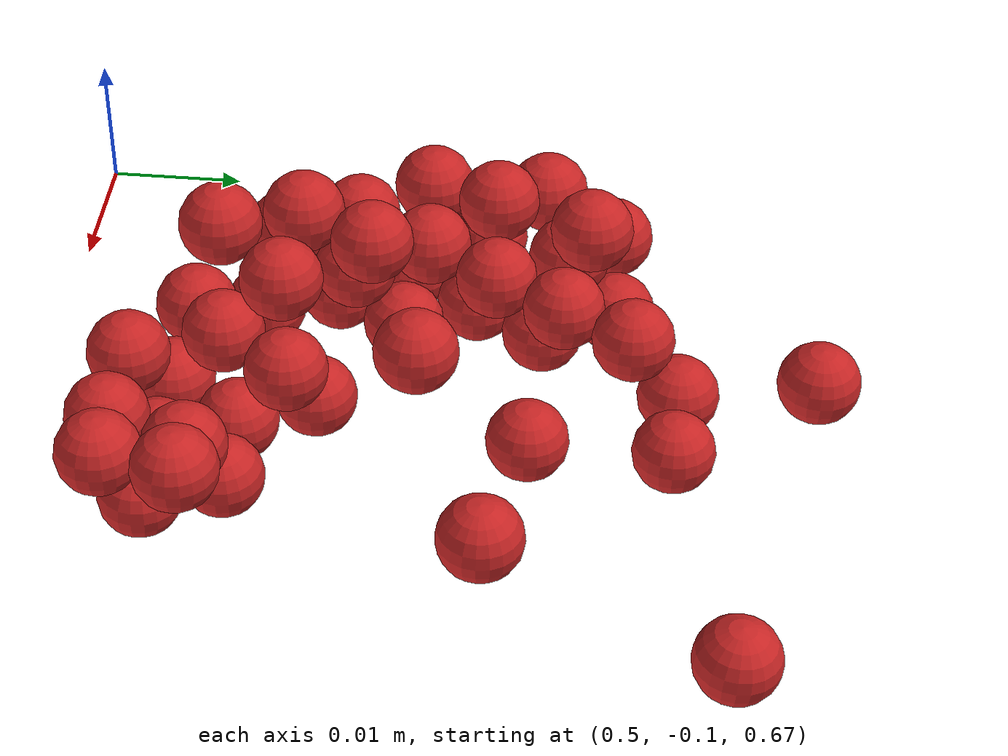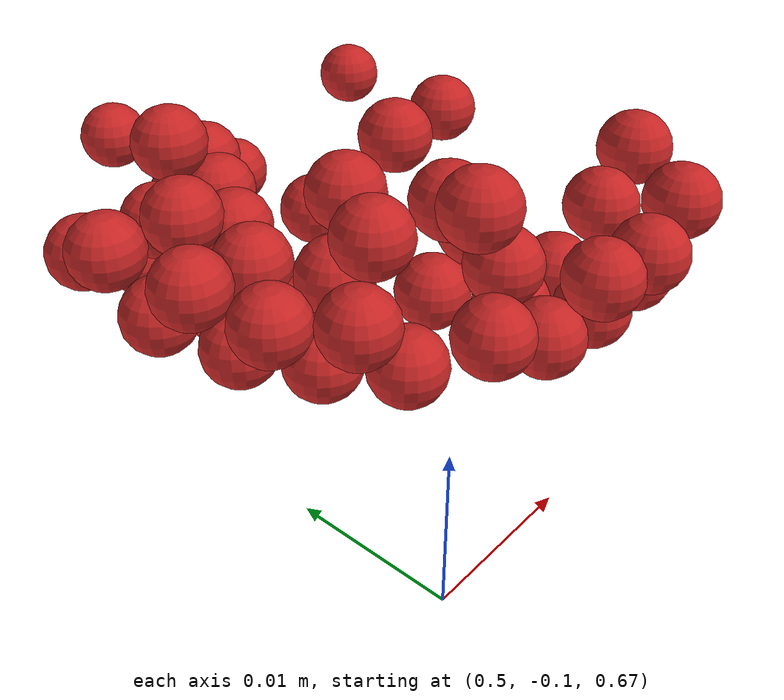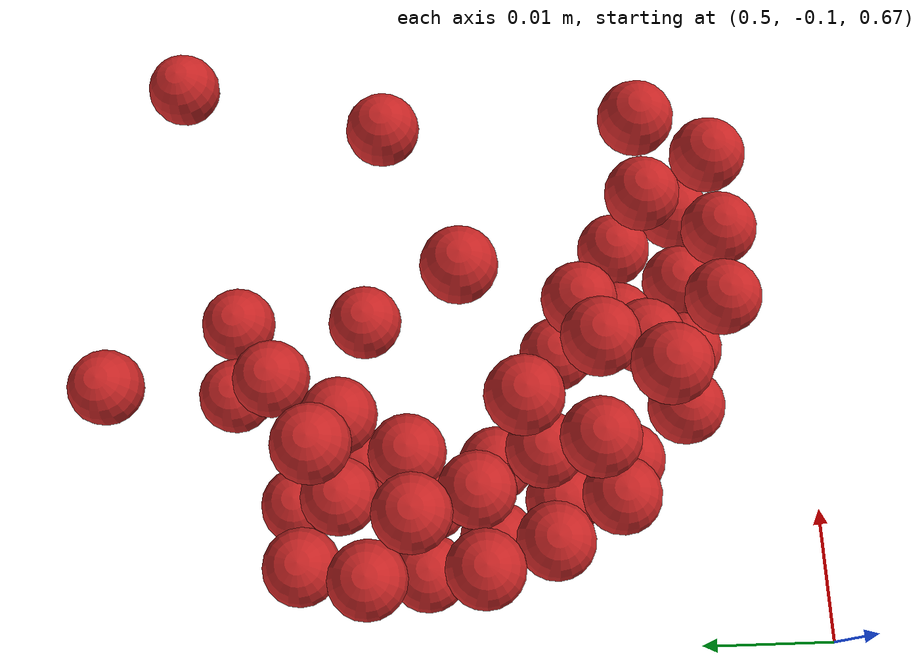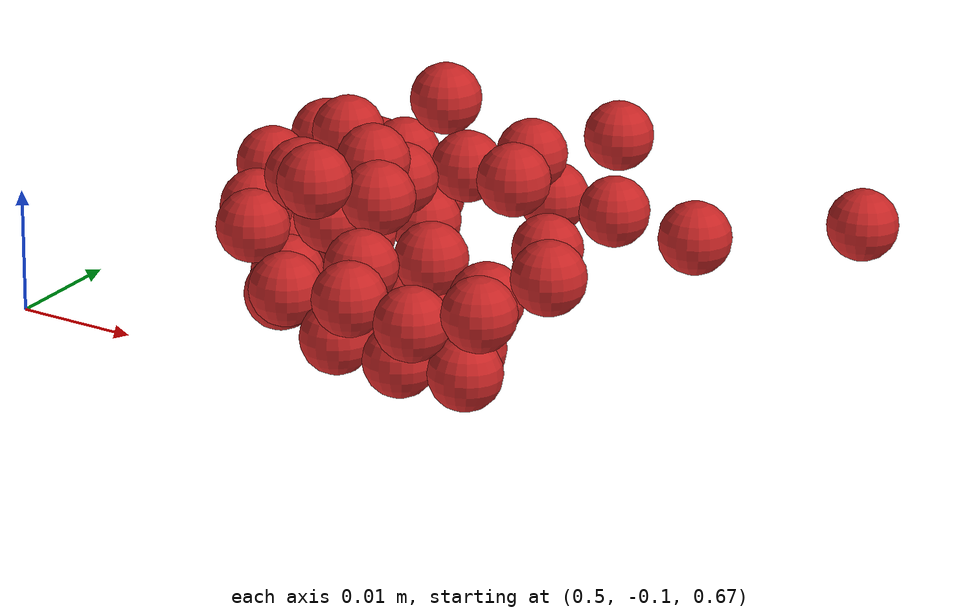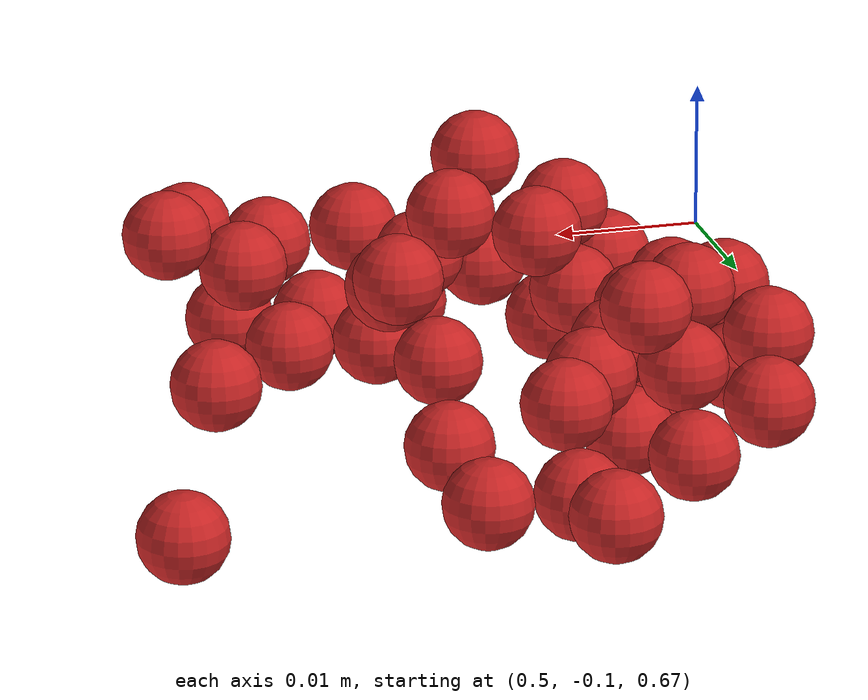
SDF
<sdf version="1.4">
 <world name="default">
  <model name="ground_plane">
   <static>1</static>
   <link name="link">
    <collision name="collision">
     <geometry><plane><normal>0 0 1</normal><size>100 100</size></plane></geometry>
     <surface><friction><ode><mu>100</mu><mu2>50</mu2></ode></friction></surface>
    </collision>
    <visual name="visual">
     <cast_shadows>0</cast_shadows>
     <geometry><plane><normal>0 0 1</normal><size>100 100</size></plane></geometry>
     <material>
      <script><uri>file://media/materials/scripts/gazebo.material</uri><name>Gazebo/Grey</name></script>
     </material>
    </visual>
    <velocity_decay><linear>0</linear><angular>0</angular></velocity_decay>
   </link>
  </model>
  <model name="sphere2">
   <pose>-0.01895 -0.049008 -0.066935 -0.010374 -0.005981 -0.001356</pose>
   <link name="link">
    <pose>0.55276 -0.048781 0.732288 0 -0 0</pose>
    <inertial>
     <mass>0.0000001</mass>
     <inertia><ixx>0.00004</ixx><ixy>0</ixy><ixz>0</ixz><iyy>0.00004</iyy><iyz>0</iyz><izz>0.00004</izz></inertia>
    </inertial>
    <collision name="collision">
     <surface>
      <contact><ode><kp>1e+10</kp><kd>1</kd></ode></contact>
      <friction><ode><mu>0.01</mu><mu2>0.01</mu2></ode></friction>
     </surface>
     <geometry><sphere><radius>0.003</radius></sphere></geometry>
    </collision>
    <visual name="visual">
     <geometry><sphere><radius>0.003</radius></sphere></geometry>
     <material>
      <script><uri>file://media/materials/scripts/gazebo.material</uri><name>Gazebo/Red</name></script>
     </material>
    </visual>
    <velocity_decay><linear>0</linear><angular>0</angular></velocity_decay>
   </link>
   <static>0</static>
  </model>
  <model name="sphere3">
   <pose>-0.044394 -0.047698 -0.057624 -0.003588 0.0046 0.006872</pose>
   <link name="link">
    <pose>0.55876 -0.048781 0.732288 0 -0 0</pose>
    <inertial>
     <mass>0.0000001</mass>
     <inertia><ixx>0.00004</ixx><ixy>0</ixy><ixz>0</ixz><iyy>0.00004</iyy><iyz>0</iyz><izz>0.00004</izz></inertia>
    </inertial>
    <collision name="collision">
     <surface>
      <contact><ode><kp>1e+10</kp><kd>1</kd></ode></contact>
      <friction><ode><mu>0.01</mu><mu2>0.01</mu2></ode></friction>
     </surface>
     <geometry><sphere><radius>0.003</radius></sphere></geometry>
    </collision>
    <visual name="visual">
     <geometry><sphere><radius>0.003</radius></sphere></geometry>
     <material>
      <script><uri>file://media/materials/scripts/gazebo.material</uri><name>Gazebo/Red</name></script>
     </material>
    </visual>
    <velocity_decay><linear>0</linear><angular>0</angular></velocity_decay>
   </link>
   <static>0</static>
  </model>
  <model name="sphere5">
   <pose>-0.034827 -0.02861 -0.058217 0.001859 -0.000326 -0.001189</pose>
   <link name="link">
    <pose>0.54676 -0.042781 0.732288 0 -0 0</pose>
    <inertial>
     <mass>0.0000001</mass>
     <inertia><ixx>0.00004</ixx><ixy>0</ixy><ixz>0</ixz><iyy>0.00004</iyy><iyz>0</iyz><izz>0.00004</izz></inertia>
    </inertial>
    <collision name="collision">
     <surface>
      <contact><ode><kp>1e+10</kp><kd>1</kd></ode></contact>
      <friction><ode><mu>0.01</mu><mu2>0.01</mu2></ode></friction>
     </surface>
     <geometry><sphere><radius>0.003</radius></sphere></geometry>
    </collision>
    <visual name="visual">
     <geometry><sphere><radius>0.003</radius></sphere></geometry>
     <material>
      <script><uri>file://media/materials/scripts/gazebo.material</uri><name>Gazebo/Red</name></script>
     </material>
    </visual>
    <velocity_decay><linear>0</linear><angular>0</angular></velocity_decay>
   </link>
   <static>0</static>
  </model>
  <model name="sphere11">
   <pose>-0.020797 -0.053953 -0.055216 -0.058591 0.013196 -0.003456</pose>
   <link name="link">
    <pose>0.55876 -0.036781 0.732288 0 -0 0</pose>
    <inertial>
     <mass>0.0000001</mass>
     <inertia><ixx>0.00004</ixx><ixy>0</ixy><ixz>0</ixz><iyy>0.00004</iyy><iyz>0</iyz><izz>0.00004</izz></inertia>
    </inertial>
    <collision name="collision">
     <surface>
      <contact><ode><kp>1e+10</kp><kd>1</kd></ode></contact>
      <friction><ode><mu>0.01</mu><mu2>0.01</mu2></ode></friction>
     </surface>
     <geometry><sphere><radius>0.003</radius></sphere></geometry>
    </collision>
    <visual name="visual">
     <geometry><sphere><radius>0.003</radius></sphere></geometry>
     <material>
      <script><uri>file://media/materials/scripts/gazebo.material</uri><name>Gazebo/Red</name></script>
     </material>
    </visual>
    <velocity_decay><linear>0</linear><angular>0</angular></velocity_decay>
   </link>
   <static>0</static>
  </model>
  <model name="sphere12">
   <pose>-0.026586 -0.043876 -0.05611 0.009283 0.012691 0.001803</pose>
   <link name="link">
    <pose>0.54076 -0.030781 0.732288 0 -0 0</pose>
    <inertial>
     <mass>0.0000001</mass>
     <inertia><ixx>0.00004</ixx><ixy>0</ixy><ixz>0</ixz><iyy>0.00004</iyy><iyz>0</iyz><izz>0.00004</izz></inertia>
    </inertial>
    <collision name="collision">
     <surface>
      <contact><ode><kp>1e+10</kp><kd>1</kd></ode></contact>
      <friction><ode><mu>0.01</mu><mu2>0.01</mu2></ode></friction>
     </surface>
     <geometry><sphere><radius>0.003</radius></sphere></geometry>
    </collision>
    <visual name="visual">
     <geometry><sphere><radius>0.003</radius></sphere></geometry>
     <material>
      <script><uri>file://media/materials/scripts/gazebo.material</uri><name>Gazebo/Red</name></script>
     </material>
    </visual>
    <velocity_decay><linear>0</linear><angular>0</angular></velocity_decay>
   </link>
   <static>0</static>
  </model>
  <model name="sphere13">
   <pose>-0.034947 -0.036555 -0.061277 -0.010989 0.004302 -0.010016</pose>
   <link name="link">
    <pose>0.54676 -0.030781 0.732288 0 -0 0</pose>
    <inertial>
     <mass>0.0000001</mass>
     <inertia><ixx>0.00004</ixx><ixy>0</ixy><ixz>0</ixz><iyy>0.00004</iyy><iyz>0</iyz><izz>0.00004</izz></inertia>
    </inertial>
    <collision name="collision">
     <surface>
      <contact><ode><kp>1e+10</kp><kd>1</kd></ode></contact>
      <friction><ode><mu>0.01</mu><mu2>0.01</mu2></ode></friction>
     </surface>
     <geometry><sphere><radius>0.003</radius></sphere></geometry>
    </collision>
    <visual name="visual">
     <geometry><sphere><radius>0.003</radius></sphere></geometry>
     <material>
      <script><uri>file://media/materials/scripts/gazebo.material</uri><name>Gazebo/Red</name></script>
     </material>
    </visual>
    <velocity_decay><linear>0</linear><angular>0</angular></velocity_decay>
   </link>
   <static>0</static>
  </model>
  <model name="sphere16">
   <pose>-0.024652 -0.02894 -0.065397 0.000577 -0.001939 -0.000928</pose>
   <link name="link">
    <pose>0.54076 -0.048781 0.738288 0 -0 0</pose>
    <inertial>
     <mass>0.0000001</mass>
     <inertia><ixx>0.00004</ixx><ixy>0</ixy><ixz>0</ixz><iyy>0.00004</iyy><iyz>0</iyz><izz>0.00004</izz></inertia>
    </inertial>
    <collision name="collision">
     <surface>
      <contact><ode><kp>1e+10</kp><kd>1</kd></ode></contact>
      <friction><ode><mu>0.01</mu><mu2>0.01</mu2></ode></friction>
     </surface>
     <geometry><sphere><radius>0.003</radius></sphere></geometry>
    </collision>
    <visual name="visual">
     <geometry><sphere><radius>0.003</radius></sphere></geometry>
     <material>
      <script><uri>file://media/materials/scripts/gazebo.material</uri><name>Gazebo/Red</name></script>
     </material>
    </visual>
    <velocity_decay><linear>0</linear><angular>0</angular></velocity_decay>
   </link>
   <static>0</static>
  </model>
  <model name="sphere20">
   <pose>-0.035198 -0.042568 -0.048904 0.002333 0.036754 0.002307</pose>
   <link name="link">
    <pose>0.54076 -0.042781 0.738288 0 -0 0</pose>
    <inertial>
     <mass>0.0000001</mass>
     <inertia><ixx>0.00004</ixx><ixy>0</ixy><ixz>0</ixz><iyy>0.00004</iyy><iyz>0</iyz><izz>0.00004</izz></inertia>
    </inertial>
    <collision name="collision">
     <surface>
      <contact><ode><kp>1e+10</kp><kd>1</kd></ode></contact>
      <friction><ode><mu>0.01</mu><mu2>0.01</mu2></ode></friction>
     </surface>
     <geometry><sphere><radius>0.003</radius></sphere></geometry>
    </collision>
    <visual name="visual">
     <geometry><sphere><radius>0.003</radius></sphere></geometry>
     <material>
      <script><uri>file://media/materials/scripts/gazebo.material</uri><name>Gazebo/Red</name></script>
     </material>
    </visual>
    <velocity_decay><linear>0</linear><angular>0</angular></velocity_decay>
   </link>
   <static>0</static>
  </model>
  <model name="sphere24">
   <pose>-0.033227 -0.061752 -0.064947 -0.032589 0.009565 -0.001294</pose>
   <link name="link">
    <pose>0.54076 -0.036781 0.738288 0 -0 0</pose>
    <inertial>
     <mass>0.0000001</mass>
     <inertia><ixx>0.00004</ixx><ixy>0</ixy><ixz>0</ixz><iyy>0.00004</iyy><iyz>0</iyz><izz>0.00004</izz></inertia>
    </inertial>
    <collision name="collision">
     <surface>
      <contact><ode><kp>1e+10</kp><kd>1</kd></ode></contact>
      <friction><ode><mu>0.01</mu><mu2>0.01</mu2></ode></friction>
     </surface>
     <geometry><sphere><radius>0.003</radius></sphere></geometry>
    </collision>
    <visual name="visual">
     <geometry><sphere><radius>0.003</radius></sphere></geometry>
     <material>
      <script><uri>file://media/materials/scripts/gazebo.material</uri><name>Gazebo/Red</name></script>
     </material>
    </visual>
    <velocity_decay><linear>0</linear><angular>0</angular></velocity_decay>
   </link>
   <static>0</static>
  </model>
  <model name="sphere28">
   <pose>-0.028329 -0.078865 -0.072438 -0.041415 -0.005195 0.007412</pose>
   <link name="link">
    <pose>0.54076 -0.030781 0.738288 0 -0 0</pose>
    <inertial>
     <mass>0.0000001</mass>
     <inertia><ixx>0.00004</ixx><ixy>0</ixy><ixz>0</ixz><iyy>0.00004</iyy><iyz>0</iyz><izz>0.00004</izz></inertia>
    </inertial>
    <collision name="collision">
     <surface>
      <contact><ode><kp>1e+10</kp><kd>1</kd></ode></contact>
      <friction><ode><mu>0.01</mu><mu2>0.01</mu2></ode></friction>
     </surface>
     <geometry><sphere><radius>0.003</radius></sphere></geometry>
    </collision>
    <visual name="visual">
     <geometry><sphere><radius>0.003</radius></sphere></geometry>
     <material>
      <script><uri>file://media/materials/scripts/gazebo.material</uri><name>Gazebo/Red</name></script>
     </material>
    </visual>
    <velocity_decay><linear>0</linear><angular>0</angular></velocity_decay>
   </link>
   <static>0</static>
  </model>
  <model name="sphere29">
   <pose>-0.057388 -0.072465 -0.052823 -0.060579 0.030622 -0.001886</pose>
   <link name="link">
    <pose>0.54676 -0.030781 0.738288 0 -0 0</pose>
    <inertial>
     <mass>0.0000001</mass>
     <inertia><ixx>0.00004</ixx><ixy>0</ixy><ixz>0</ixz><iyy>0.00004</iyy><iyz>0</iyz><izz>0.00004</izz></inertia>
    </inertial>
    <collision name="collision">
     <surface>
      <contact><ode><kp>1e+10</kp><kd>1</kd></ode></contact>
      <friction><ode><mu>0.01</mu><mu2>0.01</mu2></ode></friction>
     </surface>
     <geometry><sphere><radius>0.003</radius></sphere></geometry>
    </collision>
    <visual name="visual">
     <geometry><sphere><radius>0.003</radius></sphere></geometry>
     <material>
      <script><uri>file://media/materials/scripts/gazebo.material</uri><name>Gazebo/Red</name></script>
     </material>
    </visual>
    <velocity_decay><linear>0</linear><angular>0</angular></velocity_decay>
   </link>
   <static>0</static>
  </model>
  <model name="sphere34">
   <pose>-0.025953 -0.054325 -0.077858 -0.011172 -0.004961 0.00726</pose>
   <link name="link">
    <pose>0.55276 -0.048781 0.744288 0 -0 0</pose>
    <inertial>
     <mass>0.0000001</mass>
     <inertia><ixx>0.00004</ixx><ixy>0</ixy><ixz>0</ixz><iyy>0.00004</iyy><iyz>0</iyz><izz>0.00004</izz></inertia>
    </inertial>
    <collision name="collision">
     <surface>
      <contact><ode><kp>1e+10</kp><kd>1</kd></ode></contact>
      <friction><ode><mu>0.01</mu><mu2>0.01</mu2></ode></friction>
     </surface>
     <geometry><sphere><radius>0.003</radius></sphere></geometry>
    </collision>
    <visual name="visual">
     <geometry><sphere><radius>0.003</radius></sphere></geometry>
     <material>
      <script><uri>file://media/materials/scripts/gazebo.material</uri><name>Gazebo/Red</name></script>
     </material>
    </visual>
    <velocity_decay><linear>0</linear><angular>0</angular></velocity_decay>
   </link>
   <static>0</static>
  </model>
  <model name="sphere35">
   <pose>-0.037344 -0.032251 -0.071337 0.005423 0.006829 -0.001112</pose>
   <link name="link">
    <pose>0.55876 -0.048781 0.744288 0 -0 0</pose>
    <inertial>
     <mass>0.0000001</mass>
     <inertia><ixx>0.00004</ixx><ixy>0</ixy><ixz>0</ixz><iyy>0.00004</iyy><iyz>0</iyz><izz>0.00004</izz></inertia>
    </inertial>
    <collision name="collision">
     <surface>
      <contact><ode><kp>1e+10</kp><kd>1</kd></ode></contact>
      <friction><ode><mu>0.01</mu><mu2>0.01</mu2></ode></friction>
     </surface>
     <geometry><sphere><radius>0.003</radius></sphere></geometry>
    </collision>
    <visual name="visual">
     <geometry><sphere><radius>0.003</radius></sphere></geometry>
     <material>
      <script><uri>file://media/materials/scripts/gazebo.material</uri><name>Gazebo/Red</name></script>
     </material>
    </visual>
    <velocity_decay><linear>0</linear><angular>0</angular></velocity_decay>
   </link>
   <static>0</static>
  </model>
  <model name="sphere36">
   <pose>-0.028461 -0.033955 -0.072567 0.00911 0.003166 -0.003709</pose>
   <link name="link">
    <pose>0.54076 -0.042781 0.744288 0 -0 0</pose>
    <inertial>
     <mass>0.0000001</mass>
     <inertia><ixx>0.00004</ixx><ixy>0</ixy><ixz>0</ixz><iyy>0.00004</iyy><iyz>0</iyz><izz>0.00004</izz></inertia>
    </inertial>
    <collision name="collision">
     <surface>
      <contact><ode><kp>1e+10</kp><kd>1</kd></ode></contact>
      <friction><ode><mu>0.01</mu><mu2>0.01</mu2></ode></friction>
     </surface>
     <geometry><sphere><radius>0.003</radius></sphere></geometry>
    </collision>
    <visual name="visual">
     <geometry><sphere><radius>0.003</radius></sphere></geometry>
     <material>
      <script><uri>file://media/materials/scripts/gazebo.material</uri><name>Gazebo/Red</name></script>
     </material>
    </visual>
    <velocity_decay><linear>0</linear><angular>0</angular></velocity_decay>
   </link>
   <static>0</static>
  </model>
  <model name="sphere38">
   <pose>-0.02184 -0.030052 -0.062673 -0.007751 0.014486 0.000431</pose>
   <link name="link">
    <pose>0.55276 -0.042781 0.744288 0 -0 0</pose>
    <inertial>
     <mass>0.0000001</mass>
     <inertia><ixx>0.00004</ixx><ixy>0</ixy><ixz>0</ixz><iyy>0.00004</iyy><iyz>0</iyz><izz>0.00004</izz></inertia>
    </inertial>
    <collision name="collision">
     <surface>
      <contact><ode><kp>1e+10</kp><kd>1</kd></ode></contact>
      <friction><ode><mu>0.01</mu><mu2>0.01</mu2></ode></friction>
     </surface>
     <geometry><sphere><radius>0.003</radius></sphere></geometry>
    </collision>
    <visual name="visual">
     <geometry><sphere><radius>0.003</radius></sphere></geometry>
     <material>
      <script><uri>file://media/materials/scripts/gazebo.material</uri><name>Gazebo/Red</name></script>
     </material>
    </visual>
    <velocity_decay><linear>0</linear><angular>0</angular></velocity_decay>
   </link>
   <static>0</static>
  </model>
  <model name="sphere40">
   <pose>-0.03001 -0.060572 -0.073522 -0.009641 -0.004669 0.020482</pose>
   <link name="link">
    <pose>0.54076 -0.036781 0.744288 0 -0 0</pose>
    <inertial>
     <mass>0.0000001</mass>
     <inertia><ixx>0.00004</ixx><ixy>0</ixy><ixz>0</ixz><iyy>0.00004</iyy><iyz>0</iyz><izz>0.00004</izz></inertia>
    </inertial>
    <collision name="collision">
     <surface>
      <contact><ode><kp>1e+10</kp><kd>1</kd></ode></contact>
      <friction><ode><mu>0.01</mu><mu2>0.01</mu2></ode></friction>
     </surface>
     <geometry><sphere><radius>0.003</radius></sphere></geometry>
    </collision>
    <visual name="visual">
     <geometry><sphere><radius>0.003</radius></sphere></geometry>
     <material>
      <script><uri>file://media/materials/scripts/gazebo.material</uri><name>Gazebo/Red</name></script>
     </material>
    </visual>
    <velocity_decay><linear>0</linear><angular>0</angular></velocity_decay>
   </link>
   <static>0</static>
  </model>
  <model name="sphere41">
   <pose>-0.034616 -0.031726 -0.074725 -0.004914 -0.009288 -0.000557</pose>
   <link name="link">
    <pose>0.54676 -0.036781 0.744288 0 -0 0</pose>
    <inertial>
     <mass>0.0000001</mass>
     <inertia><ixx>0.00004</ixx><ixy>0</ixy><ixz>0</ixz><iyy>0.00004</iyy><iyz>0</iyz><izz>0.00004</izz></inertia>
    </inertial>
    <collision name="collision">
     <surface>
      <contact><ode><kp>1e+10</kp><kd>1</kd></ode></contact>
      <friction><ode><mu>0.01</mu><mu2>0.01</mu2></ode></friction>
     </surface>
     <geometry><sphere><radius>0.003</radius></sphere></geometry>
    </collision>
    <visual name="visual">
     <geometry><sphere><radius>0.003</radius></sphere></geometry>
     <material>
      <script><uri>file://media/materials/scripts/gazebo.material</uri><name>Gazebo/Red</name></script>
     </material>
    </visual>
    <velocity_decay><linear>0</linear><angular>0</angular></velocity_decay>
   </link>
   <static>0</static>
  </model>
  <model name="sphere44">
   <pose>-0.020141 -0.056278 -0.064548 0.001182 -0.001983 0.000811</pose>
   <link name="link">
    <pose>0.54076 -0.030781 0.744288 0 -0 0</pose>
    <inertial>
     <mass>0.0000001</mass>
     <inertia><ixx>0.00004</ixx><ixy>0</ixy><ixz>0</ixz><iyy>0.00004</iyy><iyz>0</iyz><izz>0.00004</izz></inertia>
    </inertial>
    <collision name="collision">
     <surface>
      <contact><ode><kp>1e+10</kp><kd>1</kd></ode></contact>
      <friction><ode><mu>0.01</mu><mu2>0.01</mu2></ode></friction>
     </surface>
     <geometry><sphere><radius>0.003</radius></sphere></geometry>
    </collision>
    <visual name="visual">
     <geometry><sphere><radius>0.003</radius></sphere></geometry>
     <material>
      <script><uri>file://media/materials/scripts/gazebo.material</uri><name>Gazebo/Red</name></script>
     </material>
    </visual>
    <velocity_decay><linear>0</linear><angular>0</angular></velocity_decay>
   </link>
   <static>0</static>
  </model>
  <model name="sphere45">
   <pose>-0.037827 -0.056009 -0.073877 -0.024325 0.003679 -0.00229</pose>
   <link name="link">
    <pose>0.54676 -0.030781 0.744288 0 -0 0</pose>
    <inertial>
     <mass>0.0000001</mass>
     <inertia><ixx>0.00004</ixx><ixy>0</ixy><ixz>0</ixz><iyy>0.00004</iyy><iyz>0</iyz><izz>0.00004</izz></inertia>
    </inertial>
    <collision name="collision">
     <surface>
      <contact><ode><kp>1e+10</kp><kd>1</kd></ode></contact>
      <friction><ode><mu>0.01</mu><mu2>0.01</mu2></ode></friction>
     </surface>
     <geometry><sphere><radius>0.003</radius></sphere></geometry>
    </collision>
    <visual name="visual">
     <geometry><sphere><radius>0.003</radius></sphere></geometry>
     <material>
      <script><uri>file://media/materials/scripts/gazebo.material</uri><name>Gazebo/Red</name></script>
     </material>
    </visual>
    <velocity_decay><linear>0</linear><angular>0</angular></velocity_decay>
   </link>
   <static>0</static>
  </model>
  <model name="sphere60">
   <pose>-0.034583 -0.067486 -0.073125 -0.004009 0.005726 0.02023</pose>
   <link name="link">
    <pose>0.54076 -0.030781 0.750288 0 -0 0</pose>
    <inertial>
     <mass>0.0000001</mass>
     <inertia><ixx>0.00004</ixx><ixy>0</ixy><ixz>0</ixz><iyy>0.00004</iyy><iyz>0</iyz><izz>0.00004</izz></inertia>
    </inertial>
    <collision name="collision">
     <surface>
      <contact><ode><kp>1e+10</kp><kd>1</kd></ode></contact>
      <friction><ode><mu>0.01</mu><mu2>0.01</mu2></ode></friction>
     </surface>
     <geometry><sphere><radius>0.003</radius></sphere></geometry>
    </collision>
    <visual name="visual">
     <geometry><sphere><radius>0.003</radius></sphere></geometry>
     <material>
      <script><uri>file://media/materials/scripts/gazebo.material</uri><name>Gazebo/Red</name></script>
     </material>
    </visual>
    <velocity_decay><linear>0</linear><angular>0</angular></velocity_decay>
   </link>
   <static>0</static>
  </model>
  <model name="sphere65">
   <pose>-0.032885 -0.05331 -0.071546 -0.027943 0.029482 -0.01762</pose>
   <link name="link">
    <pose>0.54676 -0.048781 0.756288 0 -0 0</pose>
    <inertial>
     <mass>0.0000001</mass>
     <inertia><ixx>0.00004</ixx><ixy>0</ixy><ixz>0</ixz><iyy>0.00004</iyy><iyz>0</iyz><izz>0.00004</izz></inertia>
    </inertial>
    <collision name="collision">
     <surface>
      <contact><ode><kp>1e+10</kp><kd>1</kd></ode></contact>
      <friction><ode><mu>0.01</mu><mu2>0.01</mu2></ode></friction>
     </surface>
     <geometry><sphere><radius>0.003</radius></sphere></geometry>
    </collision>
    <visual name="visual">
     <geometry><sphere><radius>0.003</radius></sphere></geometry>
     <material>
      <script><uri>file://media/materials/scripts/gazebo.material</uri><name>Gazebo/Red</name></script>
     </material>
    </visual>
    <velocity_decay><linear>0</linear><angular>0</angular></velocity_decay>
   </link>
   <static>0</static>
  </model>
  <model name="sphere66">
   <pose>-0.023766 -0.044244 -0.083962 0.004964 -0.004097 0.006455</pose>
   <link name="link">
    <pose>0.55276 -0.048781 0.756288 0 -0 0</pose>
    <inertial>
     <mass>0.0000001</mass>
     <inertia><ixx>0.00004</ixx><ixy>0</ixy><ixz>0</ixz><iyy>0.00004</iyy><iyz>0</iyz><izz>0.00004</izz></inertia>
    </inertial>
    <collision name="collision">
     <surface>
      <contact><ode><kp>1e+10</kp><kd>1</kd></ode></contact>
      <friction><ode><mu>0.01</mu><mu2>0.01</mu2></ode></friction>
     </surface>
     <geometry><sphere><radius>0.003</radius></sphere></geometry>
    </collision>
    <visual name="visual">
     <geometry><sphere><radius>0.003</radius></sphere></geometry>
     <material>
      <script><uri>file://media/materials/scripts/gazebo.material</uri><name>Gazebo/Red</name></script>
     </material>
    </visual>
    <velocity_decay><linear>0</linear><angular>0</angular></velocity_decay>
   </link>
   <static>0</static>
  </model>
  <model name="sphere72">
   <pose>-0.032482 -0.044267 -0.0875 -0.00366 -0.003641 0.016084</pose>
   <link name="link">
    <pose>0.54076 -0.036781 0.756288 0 -0 0</pose>
    <inertial>
     <mass>0.0000001</mass>
     <inertia><ixx>0.00004</ixx><ixy>0</ixy><ixz>0</ixz><iyy>0.00004</iyy><iyz>0</iyz><izz>0.00004</izz></inertia>
    </inertial>
    <collision name="collision">
     <surface>
      <contact><ode><kp>1e+10</kp><kd>1</kd></ode></contact>
      <friction><ode><mu>0.01</mu><mu2>0.01</mu2></ode></friction>
     </surface>
     <geometry><sphere><radius>0.003</radius></sphere></geometry>
    </collision>
    <visual name="visual">
     <geometry><sphere><radius>0.003</radius></sphere></geometry>
     <material>
      <script><uri>file://media/materials/scripts/gazebo.material</uri><name>Gazebo/Red</name></script>
     </material>
    </visual>
    <velocity_decay><linear>0</linear><angular>0</angular></velocity_decay>
   </link>
   <static>0</static>
  </model>
  <model name="sphere76">
   <pose>-0.029876 -0.032565 -0.085891 0.01604 0.001356 -0.008964</pose>
   <link name="link">
    <pose>0.54076 -0.030781 0.756288 0 -0 0</pose>
    <inertial>
     <mass>0.0000001</mass>
     <inertia><ixx>0.00004</ixx><ixy>0</ixy><ixz>0</ixz><iyy>0.00004</iyy><iyz>0</iyz><izz>0.00004</izz></inertia>
    </inertial>
    <collision name="collision">
     <surface>
      <contact><ode><kp>1e+10</kp><kd>1</kd></ode></contact>
      <friction><ode><mu>0.01</mu><mu2>0.01</mu2></ode></friction>
     </surface>
     <geometry><sphere><radius>0.003</radius></sphere></geometry>
    </collision>
    <visual name="visual">
     <geometry><sphere><radius>0.003</radius></sphere></geometry>
     <material>
      <script><uri>file://media/materials/scripts/gazebo.material</uri><name>Gazebo/Red</name></script>
     </material>
    </visual>
    <velocity_decay><linear>0</linear><angular>0</angular></velocity_decay>
   </link>
   <static>0</static>
  </model>
  <model name="sphere77">
   <pose>-0.025957 -0.029456 -0.082553 -0.003468 -1.8e-05 -0.00052</pose>
   <link name="link">
    <pose>0.54676 -0.030781 0.756288 0 -0 0</pose>
    <inertial>
     <mass>0.0000001</mass>
     <inertia><ixx>0.00004</ixx><ixy>0</ixy><ixz>0</ixz><iyy>0.00004</iyy><iyz>0</iyz><izz>0.00004</izz></inertia>
    </inertial>
    <collision name="collision">
     <surface>
      <contact><ode><kp>1e+10</kp><kd>1</kd></ode></contact>
      <friction><ode><mu>0.01</mu><mu2>0.01</mu2></ode></friction>
     </surface>
     <geometry><sphere><radius>0.003</radius></sphere></geometry>
    </collision>
    <visual name="visual">
     <geometry><sphere><radius>0.003</radius></sphere></geometry>
     <material>
      <script><uri>file://media/materials/scripts/gazebo.material</uri><name>Gazebo/Red</name></script>
     </material>
    </visual>
    <velocity_decay><linear>0</linear><angular>0</angular></velocity_decay>
   </link>
   <static>0</static>
  </model>
  <model name="sphere78">
   <pose>-0.018813 -0.032438 -0.09287 -0.009824 -0.009495 0.002293</pose>
   <link name="link">
    <pose>0.55276 -0.030781 0.756288 0 -0 0</pose>
    <inertial>
     <mass>0.0000001</mass>
     <inertia><ixx>0.00004</ixx><ixy>0</ixy><ixz>0</ixz><iyy>0.00004</iyy><iyz>0</iyz><izz>0.00004</izz></inertia>
    </inertial>
    <collision name="collision">
     <surface>
      <contact><ode><kp>1e+10</kp><kd>1</kd></ode></contact>
      <friction><ode><mu>0.01</mu><mu2>0.01</mu2></ode></friction>
     </surface>
     <geometry><sphere><radius>0.003</radius></sphere></geometry>
    </collision>
    <visual name="visual">
     <geometry><sphere><radius>0.003</radius></sphere></geometry>
     <material>
      <script><uri>file://media/materials/scripts/gazebo.material</uri><name>Gazebo/Red</name></script>
     </material>
    </visual>
    <velocity_decay><linear>0</linear><angular>0</angular></velocity_decay>
   </link>
   <static>0</static>
  </model>
  <model name="sphere98">
   <pose>-0.021502 -0.047483 -0.094086 -0.002491 0.001112 0.001402</pose>
   <link name="link">
    <pose>0.55276 -0.048781 0.768288 0 -0 0</pose>
    <inertial>
     <mass>0.0000001</mass>
     <inertia><ixx>0.00004</ixx><ixy>0</ixy><ixz>0</ixz><iyy>0.00004</iyy><iyz>0</iyz><izz>0.00004</izz></inertia>
    </inertial>
    <collision name="collision">
     <surface>
      <contact><ode><kp>1e+10</kp><kd>1</kd></ode></contact>
      <friction><ode><mu>0.01</mu><mu2>0.01</mu2></ode></friction>
     </surface>
     <geometry><sphere><radius>0.003</radius></sphere></geometry>
    </collision>
    <visual name="visual">
     <geometry><sphere><radius>0.003</radius></sphere></geometry>
     <material>
      <script><uri>file://media/materials/scripts/gazebo.material</uri><name>Gazebo/Red</name></script>
     </material>
    </visual>
    <velocity_decay><linear>0</linear><angular>0</angular></velocity_decay>
   </link>
   <static>0</static>
  </model>
  <model name="sphere99">
   <pose>-0.023563 -0.0429 -0.090811 0.006797 0.002955 0.007305</pose>
   <link name="link">
    <pose>0.55876 -0.048781 0.768288 0 -0 0</pose>
    <inertial>
     <mass>0.0000001</mass>
     <inertia><ixx>0.00004</ixx><ixy>0</ixy><ixz>0</ixz><iyy>0.00004</iyy><iyz>0</iyz><izz>0.00004</izz></inertia>
    </inertial>
    <collision name="collision">
     <surface>
      <contact><ode><kp>1e+10</kp><kd>1</kd></ode></contact>
      <friction><ode><mu>0.01</mu><mu2>0.01</mu2></ode></friction>
     </surface>
     <geometry><sphere><radius>0.003</radius></sphere></geometry>
    </collision>
    <visual name="visual">
     <geometry><sphere><radius>0.003</radius></sphere></geometry>
     <material>
      <script><uri>file://media/materials/scripts/gazebo.material</uri><name>Gazebo/Red</name></script>
     </material>
    </visual>
    <velocity_decay><linear>0</linear><angular>0</angular></velocity_decay>
   </link>
   <static>0</static>
  </model>
  <model name="sphere108">
   <pose>-0.034214 -0.046689 -0.093874 -0.004276 -0.001167 0.000755</pose>
   <link name="link">
    <pose>0.54076 -0.030781 0.768288 0 -0 0</pose>
    <inertial>
     <mass>0.0000001</mass>
     <inertia><ixx>0.00004</ixx><ixy>0</ixy><ixz>0</ixz><iyy>0.00004</iyy><iyz>0</iyz><izz>0.00004</izz></inertia>
    </inertial>
    <collision name="collision">
     <surface>
      <contact><ode><kp>1e+10</kp><kd>1</kd></ode></contact>
      <friction><ode><mu>0.01</mu><mu2>0.01</mu2></ode></friction>
     </surface>
     <geometry><sphere><radius>0.003</radius></sphere></geometry>
    </collision>
    <visual name="visual">
     <geometry><sphere><radius>0.003</radius></sphere></geometry>
     <material>
      <script><uri>file://media/materials/scripts/gazebo.material</uri><name>Gazebo/Red</name></script>
     </material>
    </visual>
    <velocity_decay><linear>0</linear><angular>0</angular></velocity_decay>
   </link>
   <static>0</static>
  </model>
  <model name="sphere115">
   <pose>-0.020148 -0.035964 -0.095742 0.002743 0.002424 -0.000254</pose>
   <link name="link">
    <pose>0.55876 -0.048781 0.774288 0 -0 0</pose>
    <inertial>
     <mass>0.0000001</mass>
     <inertia><ixx>0.00004</ixx><ixy>0</ixy><ixz>0</ixz><iyy>0.00004</iyy><iyz>0</iyz><izz>0.00004</izz></inertia>
    </inertial>
    <collision name="collision">
     <surface>
      <contact><ode><kp>1e+10</kp><kd>1</kd></ode></contact>
      <friction><ode><mu>0.01</mu><mu2>0.01</mu2></ode></friction>
     </surface>
     <geometry><sphere><radius>0.003</radius></sphere></geometry>
    </collision>
    <visual name="visual">
     <geometry><sphere><radius>0.003</radius></sphere></geometry>
     <material>
      <script><uri>file://media/materials/scripts/gazebo.material</uri><name>Gazebo/Red</name></script>
     </material>
    </visual>
    <velocity_decay><linear>0</linear><angular>0</angular></velocity_decay>
   </link>
   <static>0</static>
  </model>
  <model name="sphere116">
   <pose>-0.019082 -0.033628 -0.102379 -0.014737 0.006459 0.000163</pose>
   <link name="link">
    <pose>0.54076 -0.042781 0.774288 0 -0 0</pose>
    <inertial>
     <mass>0.0000001</mass>
     <inertia><ixx>0.00004</ixx><ixy>0</ixy><ixz>0</ixz><iyy>0.00004</iyy><iyz>0</iyz><izz>0.00004</izz></inertia>
    </inertial>
    <collision name="collision">
     <surface>
      <contact><ode><kp>1e+10</kp><kd>1</kd></ode></contact>
      <friction><ode><mu>0.01</mu><mu2>0.01</mu2></ode></friction>
     </surface>
     <geometry><sphere><radius>0.003</radius></sphere></geometry>
    </collision>
    <visual name="visual">
     <geometry><sphere><radius>0.003</radius></sphere></geometry>
     <material>
      <script><uri>file://media/materials/scripts/gazebo.material</uri><name>Gazebo/Red</name></script>
     </material>
    </visual>
    <velocity_decay><linear>0</linear><angular>0</angular></velocity_decay>
   </link>
   <static>0</static>
  </model>
  <model name="sphere120">
   <pose>-0.028953 -0.034033 -0.098902 -0.002929 -0.002826 4.2e-05</pose>
   <link name="link">
    <pose>0.54076 -0.036781 0.774288 0 -0 0</pose>
    <inertial>
     <mass>0.0000001</mass>
     <inertia><ixx>0.00004</ixx><ixy>0</ixy><ixz>0</ixz><iyy>0.00004</iyy><iyz>0</iyz><izz>0.00004</izz></inertia>
    </inertial>
    <collision name="collision">
     <surface>
      <contact><ode><kp>1e+10</kp><kd>1</kd></ode></contact>
      <friction><ode><mu>0.01</mu><mu2>0.01</mu2></ode></friction>
     </surface>
     <geometry><sphere><radius>0.003</radius></sphere></geometry>
    </collision>
    <visual name="visual">
     <geometry><sphere><radius>0.003</radius></sphere></geometry>
     <material>
      <script><uri>file://media/materials/scripts/gazebo.material</uri><name>Gazebo/Red</name></script>
     </material>
    </visual>
    <velocity_decay><linear>0</linear><angular>0</angular></velocity_decay>
   </link>
   <static>0</static>
  </model>
  <model name="sphere124">
   <pose>-0.021182 -0.034668 -0.10186 -0.003064 -0.002402 3e-05</pose>
   <link name="link">
    <pose>0.54076 -0.030781 0.774288 0 -0 0</pose>
    <inertial>
     <mass>0.0000001</mass>
     <inertia><ixx>0.00004</ixx><ixy>0</ixy><ixz>0</ixz><iyy>0.00004</iyy><iyz>0</iyz><izz>0.00004</izz></inertia>
    </inertial>
    <collision name="collision">
     <surface>
      <contact><ode><kp>1e+10</kp><kd>1</kd></ode></contact>
      <friction><ode><mu>0.01</mu><mu2>0.01</mu2></ode></friction>
     </surface>
     <geometry><sphere><radius>0.003</radius></sphere></geometry>
    </collision>
    <visual name="visual">
     <geometry><sphere><radius>0.003</radius></sphere></geometry>
     <material>
      <script><uri>file://media/materials/scripts/gazebo.material</uri><name>Gazebo/Red</name></script>
     </material>
    </visual>
    <velocity_decay><linear>0</linear><angular>0</angular></velocity_decay>
   </link>
   <static>0</static>
  </model>
  <model name="sphere125">
   <pose>-0.034554 -0.037031 -0.099641 -0.023478 0.011286 -0.00873</pose>
   <link name="link">
    <pose>0.54676 -0.030781 0.774288 0 -0 0</pose>
    <inertial>
     <mass>0.0000001</mass>
     <inertia><ixx>0.00004</ixx><ixy>0</ixy><ixz>0</ixz><iyy>0.00004</iyy><iyz>0</iyz><izz>0.00004</izz></inertia>
    </inertial>
    <collision name="collision">
     <surface>
      <contact><ode><kp>1e+10</kp><kd>1</kd></ode></contact>
      <friction><ode><mu>0.01</mu><mu2>0.01</mu2></ode></friction>
     </surface>
     <geometry><sphere><radius>0.003</radius></sphere></geometry>
    </collision>
    <visual name="visual">
     <geometry><sphere><radius>0.003</radius></sphere></geometry>
     <material>
      <script><uri>file://media/materials/scripts/gazebo.material</uri><name>Gazebo/Red</name></script>
     </material>
    </visual>
    <velocity_decay><linear>0</linear><angular>0</angular></velocity_decay>
   </link>
   <static>0</static>
  </model>
  <model name="sphere140">
   <pose>-0.024743 -0.038378 -0.102912 -0.001984 -0.002237 0.011542</pose>
   <link name="link">
    <pose>0.54076 -0.030781 0.780288 0 -0 0</pose>
    <inertial>
     <mass>0.0000001</mass>
     <inertia><ixx>0.00004</ixx><ixy>0</ixy><ixz>0</ixz><iyy>0.00004</iyy><iyz>0</iyz><izz>0.00004</izz></inertia>
    </inertial>
    <collision name="collision">
     <surface>
      <contact><ode><kp>1e+10</kp><kd>1</kd></ode></contact>
      <friction><ode><mu>0.01</mu><mu2>0.01</mu2></ode></friction>
     </surface>
     <geometry><sphere><radius>0.003</radius></sphere></geometry>
    </collision>
    <visual name="visual">
     <geometry><sphere><radius>0.003</radius></sphere></geometry>
     <material>
      <script><uri>file://media/materials/scripts/gazebo.material</uri><name>Gazebo/Red</name></script>
     </material>
    </visual>
    <velocity_decay><linear>0</linear><angular>0</angular></velocity_decay>
   </link>
   <static>0</static>
  </model>
  <model name="sphere142">
   <pose>-0.043216 -0.050873 -0.101178 -0.027681 0.014915 0.027468</pose>
   <link name="link">
    <pose>0.55276 -0.030781 0.780288 0 -0 0</pose>
    <inertial>
     <mass>0.0000001</mass>
     <inertia><ixx>0.00004</ixx><ixy>0</ixy><ixz>0</ixz><iyy>0.00004</iyy><iyz>0</iyz><izz>0.00004</izz></inertia>
    </inertial>
    <collision name="collision">
     <surface>
      <contact><ode><kp>1e+10</kp><kd>1</kd></ode></contact>
      <friction><ode><mu>0.01</mu><mu2>0.01</mu2></ode></friction>
     </surface>
     <geometry><sphere><radius>0.003</radius></sphere></geometry>
    </collision>
    <visual name="visual">
     <geometry><sphere><radius>0.003</radius></sphere></geometry>
     <material>
      <script><uri>file://media/materials/scripts/gazebo.material</uri><name>Gazebo/Red</name></script>
     </material>
    </visual>
    <velocity_decay><linear>0</linear><angular>0</angular></velocity_decay>
   </link>
   <static>0</static>
  </model>
  <model name="sphere146">
   <pose>-0.018883 -0.035839 -0.110912 0.003096 0.00173 -0.00091</pose>
   <link name="link">
    <pose>0.55276 -0.048781 0.786288 0 -0 0</pose>
    <inertial>
     <mass>0.0000001</mass>
     <inertia><ixx>0.00004</ixx><ixy>0</ixy><ixz>0</ixz><iyy>0.00004</iyy><iyz>0</iyz><izz>0.00004</izz></inertia>
    </inertial>
    <collision name="collision">
     <surface>
      <contact><ode><kp>1e+10</kp><kd>1</kd></ode></contact>
      <friction><ode><mu>0.01</mu><mu2>0.01</mu2></ode></friction>
     </surface>
     <geometry><sphere><radius>0.003</radius></sphere></geometry>
    </collision>
    <visual name="visual">
     <geometry><sphere><radius>0.003</radius></sphere></geometry>
     <material>
      <script><uri>file://media/materials/scripts/gazebo.material</uri><name>Gazebo/Red</name></script>
     </material>
    </visual>
    <velocity_decay><linear>0</linear><angular>0</angular></velocity_decay>
   </link>
   <static>0</static>
  </model>
  <model name="sphere148">
   <pose>-0.027392 -0.028649 -0.111744 -0.004629 0.00171 -0.000821</pose>
   <link name="link">
    <pose>0.54076 -0.042781 0.786288 0 -0 0</pose>
    <inertial>
     <mass>0.0000001</mass>
     <inertia><ixx>0.00004</ixx><ixy>0</ixy><ixz>0</ixz><iyy>0.00004</iyy><iyz>0</iyz><izz>0.00004</izz></inertia>
    </inertial>
    <collision name="collision">
     <surface>
      <contact><ode><kp>1e+10</kp><kd>1</kd></ode></contact>
      <friction><ode><mu>0.01</mu><mu2>0.01</mu2></ode></friction>
     </surface>
     <geometry><sphere><radius>0.003</radius></sphere></geometry>
    </collision>
    <visual name="visual">
     <geometry><sphere><radius>0.003</radius></sphere></geometry>
     <material>
      <script><uri>file://media/materials/scripts/gazebo.material</uri><name>Gazebo/Red</name></script>
     </material>
    </visual>
    <velocity_decay><linear>0</linear><angular>0</angular></velocity_decay>
   </link>
   <static>0</static>
  </model>
  <model name="sphere153">
   <pose>-0.018946 -0.038861 -0.108284 -0.001249 0.000317 0.003845</pose>
   <link name="link">
    <pose>0.54676 -0.036781 0.786288 0 -0 0</pose>
    <inertial>
     <mass>0.0000001</mass>
     <inertia><ixx>0.00004</ixx><ixy>0</ixy><ixz>0</ixz><iyy>0.00004</iyy><iyz>0</iyz><izz>0.00004</izz></inertia>
    </inertial>
    <collision name="collision">
     <surface>
      <contact><ode><kp>1e+10</kp><kd>1</kd></ode></contact>
      <friction><ode><mu>0.01</mu><mu2>0.01</mu2></ode></friction>
     </surface>
     <geometry><sphere><radius>0.003</radius></sphere></geometry>
    </collision>
    <visual name="visual">
     <geometry><sphere><radius>0.003</radius></sphere></geometry>
     <material>
      <script><uri>file://media/materials/scripts/gazebo.material</uri><name>Gazebo/Red</name></script>
     </material>
    </visual>
    <velocity_decay><linear>0</linear><angular>0</angular></velocity_decay>
   </link>
   <static>0</static>
  </model>
  <model name="sphere154">
   <pose>-0.0405 -0.029219 -0.11857 -0.006551 -0.007227 0.00142</pose>
   <link name="link">
    <pose>0.55276 -0.036781 0.786288 0 -0 0</pose>
    <inertial>
     <mass>0.0000001</mass>
     <inertia><ixx>0.00004</ixx><ixy>0</ixy><ixz>0</ixz><iyy>0.00004</iyy><iyz>0</iyz><izz>0.00004</izz></inertia>
    </inertial>
    <collision name="collision">
     <surface>
      <contact><ode><kp>1e+10</kp><kd>1</kd></ode></contact>
      <friction><ode><mu>0.01</mu><mu2>0.01</mu2></ode></friction>
     </surface>
     <geometry><sphere><radius>0.003</radius></sphere></geometry>
    </collision>
    <visual name="visual">
     <geometry><sphere><radius>0.003</radius></sphere></geometry>
     <material>
      <script><uri>file://media/materials/scripts/gazebo.material</uri><name>Gazebo/Red</name></script>
     </material>
    </visual>
    <velocity_decay><linear>0</linear><angular>0</angular></velocity_decay>
   </link>
   <static>0</static>
  </model>
  <model name="sphere165">
   <pose>-0.032554 -0.030072 -0.120835 -0.01281 -0.003318 -0.000737</pose>
   <link name="link">
    <pose>0.54676 -0.042781 0.792288 0 -0 0</pose>
    <inertial>
     <mass>0.0000001</mass>
     <inertia><ixx>0.00004</ixx><ixy>0</ixy><ixz>0</ixz><iyy>0.00004</iyy><iyz>0</iyz><izz>0.00004</izz></inertia>
    </inertial>
    <collision name="collision">
     <surface>
      <contact><ode><kp>1e+10</kp><kd>1</kd></ode></contact>
      <friction><ode><mu>0.01</mu><mu2>0.01</mu2></ode></friction>
     </surface>
     <geometry><sphere><radius>0.003</radius></sphere></geometry>
    </collision>
    <visual name="visual">
     <geometry><sphere><radius>0.003</radius></sphere></geometry>
     <material>
      <script><uri>file://media/materials/scripts/gazebo.material</uri><name>Gazebo/Red</name></script>
     </material>
    </visual>
    <velocity_decay><linear>0</linear><angular>0</angular></velocity_decay>
   </link>
   <static>0</static>
  </model>
  <model name="sphere194">
   <pose>-0.028034 -0.036833 -0.131025 0.001854 -0.00195 0.000213</pose>
   <link name="link">
    <pose>0.55276 -0.048781 0.804288 0 -0 0</pose>
    <inertial>
     <mass>0.0000001</mass>
     <inertia><ixx>0.00004</ixx><ixy>0</ixy><ixz>0</ixz><iyy>0.00004</iyy><iyz>0</iyz><izz>0.00004</izz></inertia>
    </inertial>
    <collision name="collision">
     <surface>
      <contact><ode><kp>1e+10</kp><kd>1</kd></ode></contact>
      <friction><ode><mu>0.01</mu><mu2>0.01</mu2></ode></friction>
     </surface>
     <geometry><sphere><radius>0.003</radius></sphere></geometry>
    </collision>
    <visual name="visual">
     <geometry><sphere><radius>0.003</radius></sphere></geometry>
     <material>
      <script><uri>file://media/materials/scripts/gazebo.material</uri><name>Gazebo/Red</name></script>
     </material>
    </visual>
    <velocity_decay><linear>0</linear><angular>0</angular></velocity_decay>
   </link>
   <static>0</static>
  </model>
  <model name="sphere197">
   <pose>-0.023468 -0.038455 -0.12662 0.002046 -0.001554 9.1e-05</pose>
   <link name="link">
    <pose>0.54676 -0.042781 0.804288 0 -0 0</pose>
    <inertial>
     <mass>0.0000001</mass>
     <inertia><ixx>0.00004</ixx><ixy>0</ixy><ixz>0</ixz><iyy>0.00004</iyy><iyz>0</iyz><izz>0.00004</izz></inertia>
    </inertial>
    <collision name="collision">
     <surface>
      <contact><ode><kp>1e+10</kp><kd>1</kd></ode></contact>
      <friction><ode><mu>0.01</mu><mu2>0.01</mu2></ode></friction>
     </surface>
     <geometry><sphere><radius>0.003</radius></sphere></geometry>
    </collision>
    <visual name="visual">
     <geometry><sphere><radius>0.003</radius></sphere></geometry>
     <material>
      <script><uri>file://media/materials/scripts/gazebo.material</uri><name>Gazebo/Red</name></script>
     </material>
    </visual>
    <velocity_decay><linear>0</linear><angular>0</angular></velocity_decay>
   </link>
   <static>0</static>
  </model>
  <model name="sphere200">
   <pose>-0.023623 -0.04366 -0.127368 0.00221 -0.003369 -0.000216</pose>
   <link name="link">
    <pose>0.54076 -0.036781 0.804288 0 -0 0</pose>
    <inertial>
     <mass>0.0000001</mass>
     <inertia><ixx>0.00004</ixx><ixy>0</ixy><ixz>0</ixz><iyy>0.00004</iyy><iyz>0</iyz><izz>0.00004</izz></inertia>
    </inertial>
    <collision name="collision">
     <surface>
      <contact><ode><kp>1e+10</kp><kd>1</kd></ode></contact>
      <friction><ode><mu>0.01</mu><mu2>0.01</mu2></ode></friction>
     </surface>
     <geometry><sphere><radius>0.003</radius></sphere></geometry>
    </collision>
    <visual name="visual">
     <geometry><sphere><radius>0.003</radius></sphere></geometry>
     <material>
      <script><uri>file://media/materials/scripts/gazebo.material</uri><name>Gazebo/Red</name></script>
     </material>
    </visual>
    <velocity_decay><linear>0</linear><angular>0</angular></velocity_decay>
   </link>
   <static>0</static>
  </model>
  <model name="sphere212">
   <pose>-0.021464 -0.03416 -0.132577 0.000736 -0.002069 0.0011</pose>
   <link name="link">
    <pose>0.54076 -0.042781 0.810288 0 -0 0</pose>
    <inertial>
     <mass>0.0000001</mass>
     <inertia><ixx>0.00004</ixx><ixy>0</ixy><ixz>0</ixz><iyy>0.00004</iyy><iyz>0</iyz><izz>0.00004</izz></inertia>
    </inertial>
    <collision name="collision">
     <surface>
      <contact><ode><kp>1e+10</kp><kd>1</kd></ode></contact>
      <friction><ode><mu>0.01</mu><mu2>0.01</mu2></ode></friction>
     </surface>
     <geometry><sphere><radius>0.003</radius></sphere></geometry>
    </collision>
    <visual name="visual">
     <geometry><sphere><radius>0.003</radius></sphere></geometry>
     <material>
      <script><uri>file://media/materials/scripts/gazebo.material</uri><name>Gazebo/Red</name></script>
     </material>
    </visual>
    <velocity_decay><linear>0</linear><angular>0</angular></velocity_decay>
   </link>
   <static>0</static>
  </model>
  <model name="sphere213">
   <pose>-0.019999 -0.039491 -0.136583 -0.000288 -0.000364 9.1e-05</pose>
   <link name="link">
    <pose>0.54676 -0.042781 0.810288 0 -0 0</pose>
    <inertial>
     <mass>0.0000001</mass>
     <inertia><ixx>0.00004</ixx><ixy>0</ixy><ixz>0</ixz><iyy>0.00004</iyy><iyz>0</iyz><izz>0.00004</izz></inertia>
    </inertial>
    <collision name="collision">
     <surface>
      <contact><ode><kp>1e+10</kp><kd>1</kd></ode></contact>
      <friction><ode><mu>0.01</mu><mu2>0.01</mu2></ode></friction>
     </surface>
     <geometry><sphere><radius>0.003</radius></sphere></geometry>
    </collision>
    <visual name="visual">
     <geometry><sphere><radius>0.003</radius></sphere></geometry>
     <material>
      <script><uri>file://media/materials/scripts/gazebo.material</uri><name>Gazebo/Red</name></script>
     </material>
    </visual>
    <velocity_decay><linear>0</linear><angular>0</angular></velocity_decay>
   </link>
   <static>0</static>
  </model>
 </world>
</sdf>
